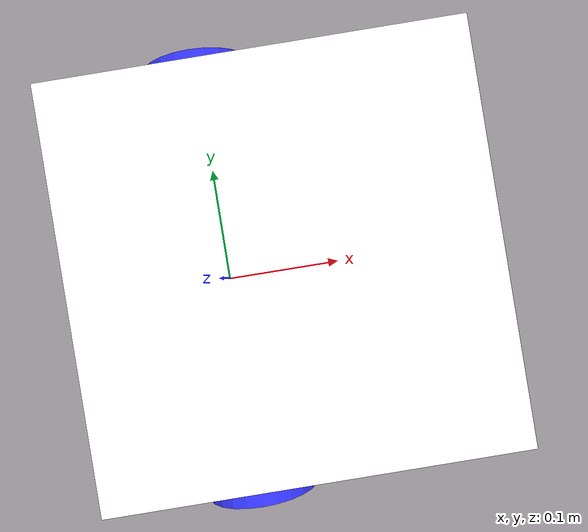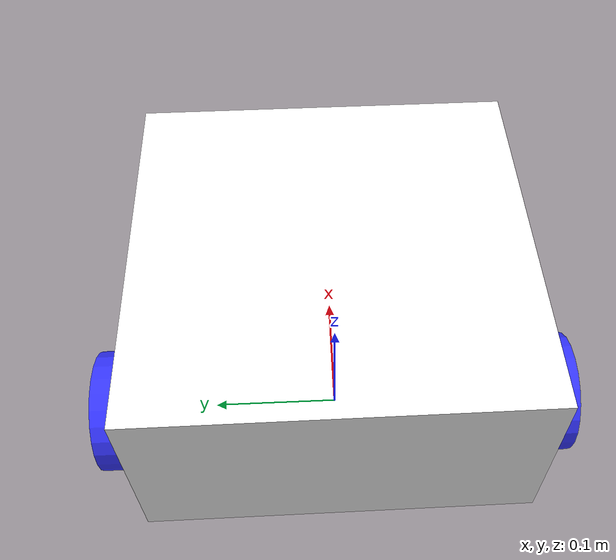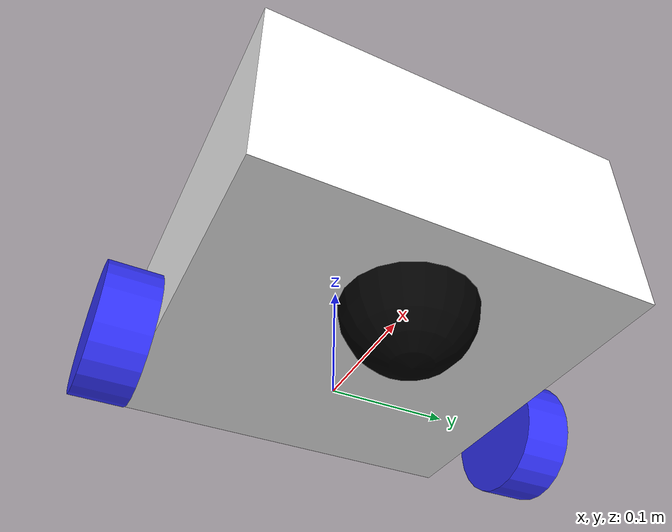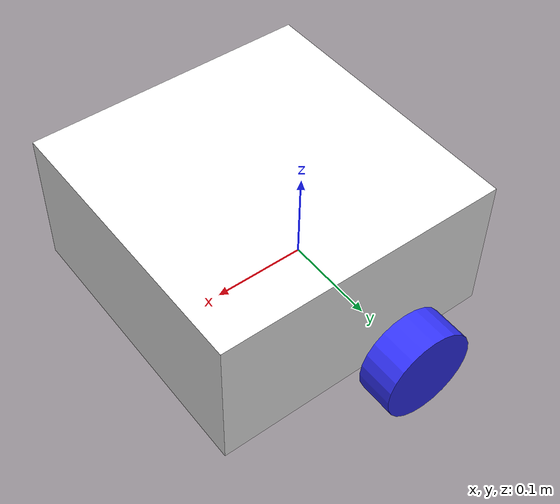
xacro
<?xml version="1.0"?>
<robot xmlns:xacro="http://www.ros.org/wiki/xacro" >

    <xacro:include filename="inertial_macros.xacro" />

    <material name = "white">
        <color rgba="1 1 1 1" />
    </material>

    <material name = "orange">
        <color rgba="1 0.3 0.1 1" />
    </material>

    <material name = "blue">
        <color rgba="0.2 0.2 1 1" />
    </material>

    <material name = "black">
        <color rgba="0 0 0 1" />
    </material>
    <!--BASE LINK -->
    <link name = "base_link">

    </link>

    <!--CHASSIS LINK -->
    <joint name="chassis_joint" type="fixed">
        <parent link="base_link" />
        <child link="chassis" />
        <origin xyz="-0.1 0 0"/>
    </joint>

    <link name="chassis">
        <visual>
        <origin xyz="0.15 0 0.075" rpy="0 0 0"/>
        <geometry>
            <box size="0.3 0.3 0.15"/>
        </geometry>
        <material name="white"/>
    </visual>
        <collision>
            <origin xyz="0.15 0 0.075" rpy="0 0 0"/>
        <geometry>
            <box size="0.3 0.3 0.15"/>
        </geometry>
        </collision>
        <xacro:inertial_box mass="0.5" x="0.3" y="0.3" z="0.15">
            <origin xyz="0.15 0 0.075" rpy="0 0 0"/>
        </xacro:inertial_box>
    </link>

    <gazebo reference="chassis">
        <material>Gazebo/White</material>
    </gazebo>

    <!--LEFT BACK WHEEL LINK -->

    <joint name="left_back_wheel_joint" type="continuous">
            <parent link="base_link"/>
            <child link="left_back_wheel" />
            <origin xyz="0 0.175 0" rpy="-${pi/2} 0 0"/>
            <axis xyz="0 0 1"/>
    </joint>

    <link name="left_back_wheel">
        <visual>
            <geometry>
                <cylinder length="0.04" radius="0.05" />
            </geometry>
            <material name="blue" />
        </visual>
        <collision>
            <geometry>
                <cylinder length="0.04" radius="0.05" />
            </geometry>
        </collision>
        <xacro:inertial_cylinder mass="0.1" length="0.05" radius="0.05">
            <origin xyz="0 0 0" rpy="0 0 0"/>
        </xacro:inertial_cylinder>
    </link>

    <gazebo reference="left_back_wheel">
        <material>Gazebo/Blue</material>
    </gazebo>

    <!--RIGHT BACK WHEEL LINK -->

    <joint name="right_back_wheel_joint" type="continuous">
            <parent link="base_link"/>
            <child link="right_back_wheel" />
            <origin xyz="0 -0.175 0" rpy="${pi/2} 0 0"/>
            <axis xyz="0 0 -1" />
    </joint>

    <link name="right_back_wheel">
        <visual>
            <geometry>
                <cylinder length="0.04" radius="0.05" />
            </geometry>
            <material name="blue" />
        </visual>
        <collision>
            <geometry>
                <cylinder length="0.04" radius="0.05" />
            </geometry>
        </collision>
        <xacro:inertial_cylinder mass="0.1" length="0.05" radius="0.05">
            <origin xyz="0 0 0" rpy="0 0 0"/>
        </xacro:inertial_cylinder>
    </link>

    <gazebo reference="right_back_wheel">
        <material>Gazebo/Blue</material>
    </gazebo>

    <!--CASTER WHEEL -->

    <joint name="caster_wheel_joint" type="fixed">
        <parent link="base_link"/>
        <child link="caster_wheel"/>
        <origin xyz="0.12 0 0" rpy="0 0 0"/>
    </joint>

    <link name="caster_wheel">
        <visual>
            <geometry>
                <sphere radius="0.05" />
            </geometry>
            <material name="black"/>
        </visual>
        <collision>
            <geometry>
                <sphere radius="0.05" />
            </geometry>
        </collision>
        <xacro:inertial_sphere mass="0.1" radius="0.05">
            <origin xyz="0 0 0" rpy="0 0 0"/>
        </xacro:inertial_sphere>
    </link>

    <gazebo reference="caster_wheel">
        <material>Gazebo/Black</material>
        <mu1 value="0.0001"/>
        <mu2 value="0.0001"/>
    </gazebo>

</robot>
